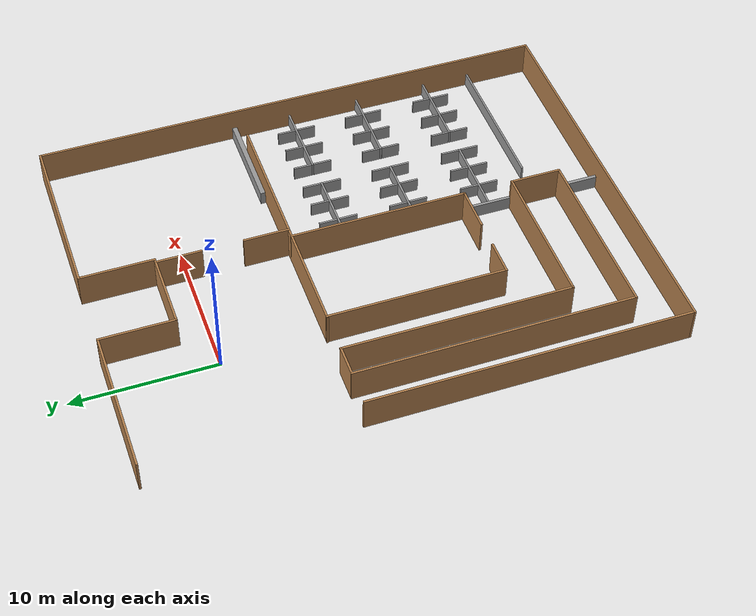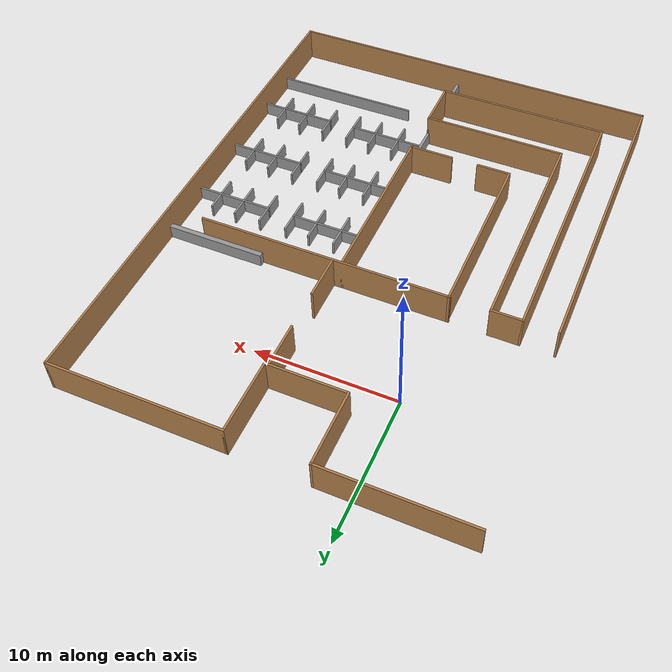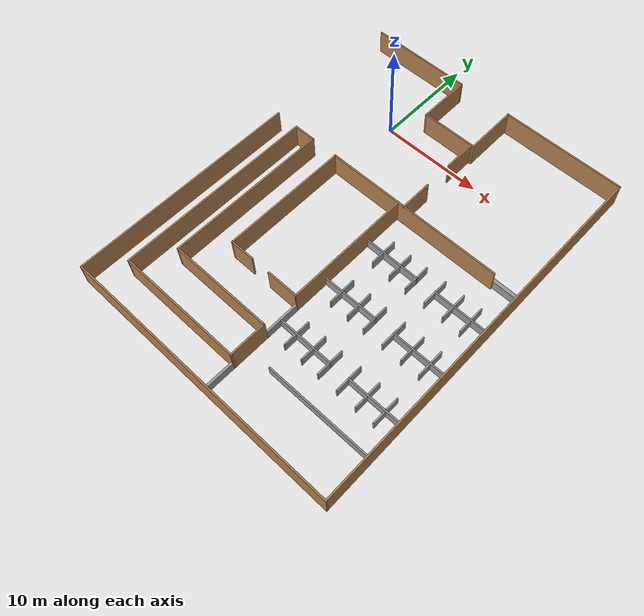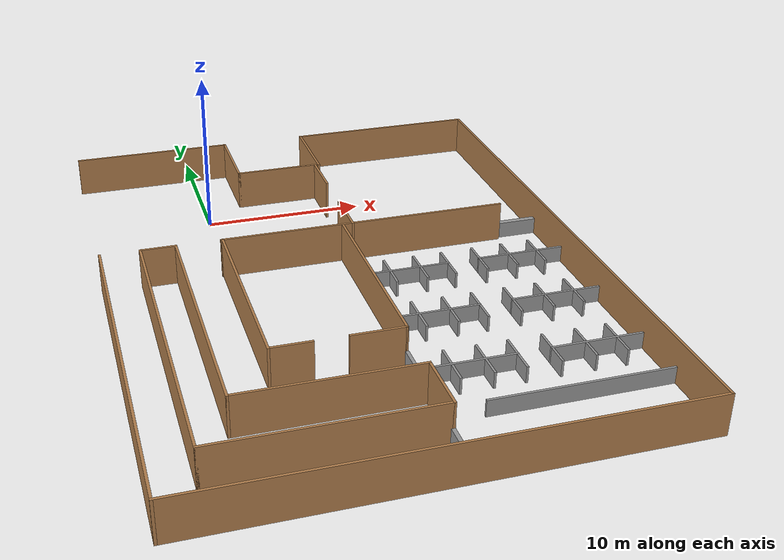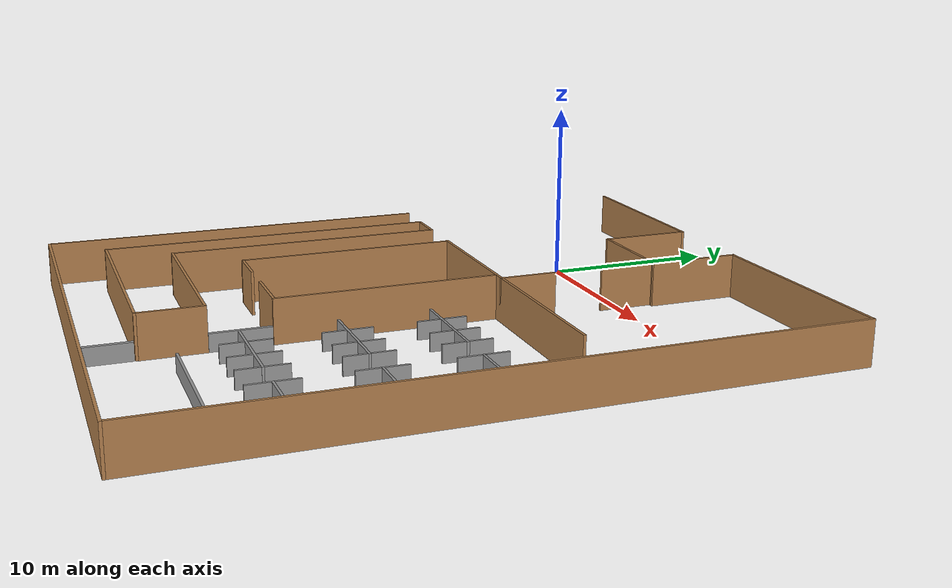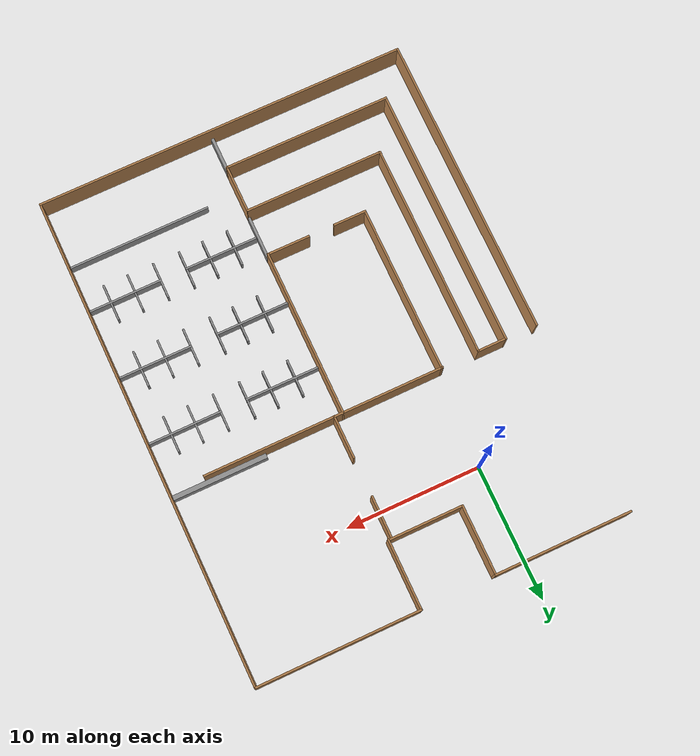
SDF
<sdf version="1.7">
 <world name="default">
  <gravity>0 0 -9.8</gravity>
  <magnetic_field>6e-06 2.3e-05 -4.2e-05</magnetic_field>
  <atmosphere type="adiabatic"/>
  <physics name="default_physics" default="0" type="ode">
   <max_step_size>0.001</max_step_size>
   <real_time_factor>1</real_time_factor>
   <real_time_update_rate>1000</real_time_update_rate>
  </physics>
  <scene>
   <ambient>0.4 0.4 0.4 1</ambient>
   <background>0.7 0.7 0.7 1</background>
   <shadows>1</shadows>
   <grid>0</grid>
   <origin_visual>0</origin_visual>
  </scene>
  <spherical_coordinates>
   <surface_model>EARTH_WGS84</surface_model>
   <latitude_deg>0</latitude_deg>
   <longitude_deg>0</longitude_deg>
   <elevation>0</elevation>
   <heading_deg>0</heading_deg>
  </spherical_coordinates>
  <light name="RetailShop_CeilingLight_001" type="point">
   <pose>2.77442 -3.62815 3.17847 0 -0 0</pose>
   <diffuse>0.5 0.5 0.5 1</diffuse>
   <specular>0.1 0.1 0.1 1</specular>
   <attenuation>
    <range>20</range>
    <constant>0.32</constant>
    <linear>0.01</linear>
    <quadratic>0.03</quadratic>
   </attenuation>
   <cast_shadows>0</cast_shadows>
   <direction>0 0 -1</direction>
   <spot><inner_angle>0</inner_angle><outer_angle>0</outer_angle><falloff>0</falloff></spot>
  </light>
  <light name="RetailShop_CeilingLight_002" type="point">
   <pose>5.38399 -5.38371 3.17847 0 -0 0</pose>
   <diffuse>0.5 0.5 0.5 1</diffuse>
   <specular>0.1 0.1 0.1 1</specular>
   <attenuation>
    <range>20</range>
    <constant>0.32</constant>
    <linear>0.01</linear>
    <quadratic>0.03</quadratic>
   </attenuation>
   <cast_shadows>0</cast_shadows>
   <direction>0 0 -1</direction>
   <spot><inner_angle>0</inner_angle><outer_angle>0</outer_angle><falloff>0</falloff></spot>
  </light>
  <light name="RetailShop_CeilingLight_003" type="point">
   <pose>5.38399 0.04192 3.17847 0 -0 0</pose>
   <diffuse>0.5 0.5 0.5 1</diffuse>
   <specular>0.1 0.1 0.1 1</specular>
   <attenuation>
    <range>20</range>
    <constant>0.32</constant>
    <linear>0.01</linear>
    <quadratic>0.03</quadratic>
   </attenuation>
   <cast_shadows>0</cast_shadows>
   <direction>0 0 -1</direction>
   <spot><inner_angle>0</inner_angle><outer_angle>0</outer_angle><falloff>0</falloff></spot>
  </light>
  <light name="RetailShop_CeilingLight_004" type="point">
   <pose>-3.21067 -5.38371 3.17847 0 -0 0</pose>
   <diffuse>0.5 0.5 0.5 1</diffuse>
   <specular>0.1 0.1 0.1 1</specular>
   <attenuation>
    <range>20</range>
    <constant>0.32</constant>
    <linear>0.01</linear>
    <quadratic>0.03</quadratic>
   </attenuation>
   <cast_shadows>0</cast_shadows>
   <direction>0 0 -1</direction>
   <spot><inner_angle>0</inner_angle><outer_angle>0</outer_angle><falloff>0</falloff></spot>
  </light>
  <light name="RetailShop_CeilingLight_005" type="point">
   <pose>-3.271 2.68593 3.17847 0 -0 0</pose>
   <diffuse>0.5 0.5 0.5 1</diffuse>
   <specular>0.1 0.1 0.1 1</specular>
   <attenuation>
    <range>20</range>
    <constant>0.32</constant>
    <linear>0.01</linear>
    <quadratic>0.03</quadratic>
   </attenuation>
   <cast_shadows>0</cast_shadows>
   <direction>0 0 -1</direction>
   <spot><inner_angle>0</inner_angle><outer_angle>0</outer_angle><falloff>0</falloff></spot>
  </light>
  <light name="RetailShop_CeilingLight_006" type="point">
   <pose>1.4932 4.69237 3.17847 0 -0 0</pose>
   <diffuse>0.5 0.5 0.5 1</diffuse>
   <specular>0.1 0.1 0.1 1</specular>
   <attenuation>
    <range>20</range>
    <constant>0.32</constant>
    <linear>0.01</linear>
    <quadratic>0.03</quadratic>
   </attenuation>
   <cast_shadows>0</cast_shadows>
   <direction>0 0 -1</direction>
   <spot><inner_angle>0</inner_angle><outer_angle>0</outer_angle><falloff>0</falloff></spot>
  </light>
  <audio><device>default</device></audio>
  <model name="wall10">
   <pose>3.93507 3.6415 0 0 -0 0</pose>
   <link name="Wall_36">
    <collision name="Wall_36_Collision">
     <geometry><box><size>5.5 0.15 2.5</size></box></geometry>
     <pose>0 0 1.25 0 -0 0</pose>
    </collision>
    <visual name="Wall_36_Visual">
     <pose>0 0 1.25 0 -0 0</pose>
     <geometry><box><size>5.5 0.15 2.5</size></box></geometry>
     <material>
      <script><uri>file://media/materials/scripts/gazebo.material</uri><name>Gazebo/Wood</name></script>
      <ambient>1 1 1 1</ambient>
     </material>
     <meta><layer>0</layer></meta>
    </visual>
    <pose>1.18507 -1.53348 0 0 -0 6e-06</pose>
   </link>
   <link name="Wall_38">
    <collision name="Wall_38_Collision">
     <geometry><box><size>5.25 0.15 2.5</size></box></geometry>
     <pose>0 0 1.25 0 -0 0</pose>
    </collision>
    <visual name="Wall_38_Visual">
     <pose>0 0 1.25 0 -0 0</pose>
     <geometry><box><size>5.25 0.15 2.5</size></box></geometry>
     <material>
      <script><uri>file://media/materials/scripts/gazebo.material</uri><name>Gazebo/Wood</name></script>
      <ambient>1 1 1 1</ambient>
     </material>
     <meta><layer>0</layer></meta>
    </visual>
    <pose>-1.49007 1.0165 0 0 -0 1.5708</pose>
   </link>
   <static>1</static>
  </model>
  <model name="bigwall1">
   <pose>10.06 -11.092 0 0 -0 0</pose>
   <link name="Wall_40">
    <collision name="Wall_40_Collision">
     <geometry><box><size>5.25 0.15 2.5</size></box></geometry>
     <pose>0 0 1.25 0 -0 0</pose>
    </collision>
    <visual name="Wall_40_Visual">
     <pose>0 0 1.25 0 -0 0</pose>
     <geometry><box><size>5.25 0.15 2.5</size></box></geometry>
     <material>
      <script><uri>file://media/materials/scripts/gazebo.material</uri><name>Gazebo/Wood</name></script>
      <ambient>1 1 1 1</ambient>
     </material>
     <meta><layer>0</layer></meta>
    </visual>
    <pose>-2.115 15.75 0 0 -0 1.5708</pose>
   </link>
   <link name="Wall_42">
    <collision name="Wall_42_Collision">
     <geometry><box><size>12.25 0.15 2.5</size></box></geometry>
     <pose>0 0 1.25 0 -0 0</pose>
    </collision>
    <visual name="Wall_42_Visual">
     <pose>0 0 1.25 0 -0 0</pose>
     <geometry><box><size>12.25 0.15 2.5</size></box></geometry>
     <material>
      <script><uri>file://media/materials/scripts/gazebo.material</uri><name>Gazebo/Wood</name></script>
      <ambient>1 1 1 1</ambient>
     </material>
     <meta><layer>0</layer></meta>
    </visual>
    <pose>3.935 18.3 0 0 -0 0</pose>
   </link>
   <link name="Wall_49">
    <collision name="Wall_49_Collision">
     <geometry><box><size>36.75 0.15 2.5</size></box></geometry>
     <pose>0 0 1.25 0 -0 0</pose>
    </collision>
    <visual name="Wall_49_Visual">
     <pose>0 0 1.25 0 -0 0</pose>
     <geometry><box><size>36.75 0.15 2.5</size></box></geometry>
     <material>
      <script><uri>file://media/materials/scripts/gazebo.material</uri><name>Gazebo/Wood</name></script>
      <ambient>1 1 1 1</ambient>
     </material>
     <meta><layer>0</layer></meta>
    </visual>
    <pose>9.985 0 0 0 -0 -1.5708</pose>
   </link>
   <static>1</static>
  </model>
  <model name="wall_40">
   <pose>-2.605 3.6415 0 0 -0 0</pose>
   <link name="Wall_96">
    <collision name="Wall_96_Collision">
     <geometry><box><size>10.25 0.15 2.5</size></box></geometry>
     <pose>0 0 1.25 0 -0 0</pose>
    </collision>
    <visual name="Wall_96_Visual">
     <pose>0 0 1.25 0 -0 0</pose>
     <geometry><box><size>10.25 0.15 2.5</size></box></geometry>
     <material>
      <script><uri>file://media/materials/scripts/gazebo.material</uri><name>Gazebo/Wood</name></script>
      <ambient>1 1 1 1</ambient>
     </material>
     <meta><layer>0</layer></meta>
    </visual>
    <pose>0 3.5665 0 0 -0 3.14159</pose>
   </link>
   <static>1</static>
  </model>
  <model name="WALL_C">
   <pose>6.195 -14.7335 0 0 -0 0</pose>
   <link name="Wall_98">
    <collision name="Wall_98_Collision">
     <geometry><box><size>27.85 0.15 2.5</size></box></geometry>
     <pose>0 0 1.25 0 -0 0</pose>
    </collision>
    <visual name="Wall_98_Visual">
     <pose>0 0 1.25 0 -0 0</pose>
     <geometry><box><size>27.85 0.15 2.5</size></box></geometry>
     <material>
      <script><uri>file://media/materials/scripts/gazebo.material</uri><name>Gazebo/Wood</name></script>
      <ambient>1 1 1 1</ambient>
     </material>
     <meta><layer>0</layer></meta>
    </visual>
    <pose>-0 -14.6585 0 0 -0 3.14159</pose>
   </link>
   <static>1</static>
  </model>
  <model name="WALL_D">
   <pose>-3.865 -14.7335 0 0 -0 0</pose>
   <link name="Wall_100">
    <collision name="Wall_100_Collision">
     <geometry><box><size>22.5 0.15 2.5</size></box></geometry>
     <pose>0 0 1.25 0 -0 0</pose>
    </collision>
    <visual name="Wall_100_Visual">
     <pose>0 0 1.25 0 -0 0</pose>
     <geometry><box><size>22.5 0.15 2.5</size></box></geometry>
     <material>
      <script><uri>file://media/materials/scripts/gazebo.material</uri><name>Gazebo/Wood</name></script>
      <ambient>1 1 1 1</ambient>
     </material>
     <meta><layer>0</layer></meta>
    </visual>
    <pose>-3.79 -3.4835 0 0 -0 1.5708</pose>
   </link>
   <static>1</static>
  </model>
  <light name="RetailShop_CeilingLight_006_clone" type="point">
   <pose>13.2087 -12.9727 3.17847 0 -0 0</pose>
   <diffuse>0.5 0.5 0.5 1</diffuse>
   <specular>0.1 0.1 0.1 1</specular>
   <direction>0 0 -1</direction>
   <attenuation>
    <range>20</range>
    <constant>0.32</constant>
    <linear>0.01</linear>
    <quadratic>0.03</quadratic>
   </attenuation>
   <cast_shadows>0</cast_shadows>
   <spot><inner_angle>0</inner_angle><outer_angle>0</outer_angle><falloff>0</falloff></spot>
  </light>
  <light name="RetailShop_CeilingLight_001_clone_clone" type="point">
   <pose>13.1607 -16.7337 3.17847 0 -0 0</pose>
   <diffuse>0.5 0.5 0.5 1</diffuse>
   <specular>0.1 0.1 0.1 1</specular>
   <direction>0 0 -1</direction>
   <attenuation>
    <range>20</range>
    <constant>0.32</constant>
    <linear>0.01</linear>
    <quadratic>0.03</quadratic>
   </attenuation>
   <cast_shadows>0</cast_shadows>
   <spot><inner_angle>0</inner_angle><outer_angle>0</outer_angle><falloff>0</falloff></spot>
  </light>
  <light name="RetailShop_CeilingLight_002_clone_clone" type="point">
   <pose>13.1202 -20.5297 3.17847 0 -0 0</pose>
   <diffuse>0.5 0.5 0.5 1</diffuse>
   <specular>0.1 0.1 0.1 1</specular>
   <direction>0 0 -1</direction>
   <attenuation>
    <range>20</range>
    <constant>0.32</constant>
    <linear>0.01</linear>
    <quadratic>0.03</quadratic>
   </attenuation>
   <cast_shadows>0</cast_shadows>
   <spot><inner_angle>0</inner_angle><outer_angle>0</outer_angle><falloff>0</falloff></spot>
  </light>
  <light name="RetailShop_CeilingLight_003_clone_clone" type="point">
   <pose>13.1202 -24.511 3.17847 0 -0 0</pose>
   <diffuse>0.5 0.5 0.5 1</diffuse>
   <specular>0.1 0.1 0.1 1</specular>
   <direction>0 0 -1</direction>
   <attenuation>
    <range>20</range>
    <constant>0.32</constant>
    <linear>0.01</linear>
    <quadratic>0.03</quadratic>
   </attenuation>
   <cast_shadows>0</cast_shadows>
   <spot><inner_angle>0</inner_angle><outer_angle>0</outer_angle><falloff>0</falloff></spot>
  </light>
  <model name="WALL_G">
   <pose>6.097 -3.5585 0 0 -0 0</pose>
   <link name="Wall_0">
    <collision name="Wall_0_Collision">
     <geometry><box><size>2.15 0.15 2.5</size></box></geometry>
     <pose>0 0 1.25 0 -0 0</pose>
    </collision>
    <visual name="Wall_0_Visual">
     <pose>0 0 1.25 0 -0 0</pose>
     <geometry><box><size>2.15 0.15 2.5</size></box></geometry>
     <material>
      <script><uri>file://media/materials/scripts/gazebo.material</uri><name>Gazebo/Wood</name></script>
      <ambient>1 1 1 1</ambient>
     </material>
     <meta><layer>0</layer></meta>
    </visual>
    <pose>-10.297 -3.4835 0 0 -0 0</pose>
   </link>
   <link name="Wall_9">
    <collision name="Wall_9_Collision">
     <geometry><box><size>18 0.15 2.5</size></box></geometry>
     <pose>0 0 1.25 0 -0 0</pose>
    </collision>
    <visual name="Wall_9_Visual">
     <pose>0 0 1.25 0 -0 0</pose>
     <geometry><box><size>18 0.15 2.5</size></box></geometry>
     <material>
      <script><uri>file://media/materials/scripts/gazebo.material</uri><name>Gazebo/Wood</name></script>
      <ambient>1 1 1 1</ambient>
     </material>
     <meta><layer>0</layer></meta>
    </visual>
    <pose>2.372 -3.4835 0 0 -0 0</pose>
   </link>
   <static>1</static>
  </model>
  <model name="WALL_F">
   <pose>3.885 -2.467 0 0 -0 0</pose>
   <link name="Wall_11">
    <collision name="Wall_11_Collision">
     <geometry><box><size>3.25 0.15 2.5</size></box></geometry>
     <pose>0 0 1.25 0 -0 0</pose>
    </collision>
    <visual name="Wall_11_Visual">
     <pose>0 0 1.25 0 -0 0</pose>
     <geometry><box><size>3.25 0.15 2.5</size></box></geometry>
     <material>
      <script><uri>file://media/materials/scripts/gazebo.material</uri><name>Gazebo/Wood</name></script>
      <ambient>1 1 1 1</ambient>
     </material>
     <meta><layer>0</layer></meta>
    </visual>
    <pose>3.81 -3.025 0 0 -0 1.5708</pose>
   </link>
   <link name="Wall_13">
    <collision name="Wall_13_Collision">
     <geometry><box><size>3.25 0.15 2.5</size></box></geometry>
     <pose>0 0 1.25 0 -0 0</pose>
    </collision>
    <visual name="Wall_13_Visual">
     <pose>0 0 1.25 0 -0 0</pose>
     <geometry><box><size>3.25 0.15 2.5</size></box></geometry>
     <material>
      <script><uri>file://media/materials/scripts/gazebo.material</uri><name>Gazebo/Wood</name></script>
      <ambient>1 1 1 1</ambient>
     </material>
     <meta><layer>0</layer></meta>
    </visual>
    <pose>3.81 3.025 0 0 -0 -1.5708</pose>
   </link>
   <static>1</static>
  </model>
  <model name="WALL_H1">
   <pose>0.875 -13.2335 0 0 -0 0</pose>
   <link name="Wall_21">
    <collision name="Wall_21_Collision">
     <geometry><box><size>19.5 0.15 2.5</size></box></geometry>
     <pose>0 0 1.25 0 -0 0</pose>
    </collision>
    <visual name="Wall_21_Visual">
     <pose>0 0 1.25 0 -0 0</pose>
     <geometry><box><size>19.5 0.15 2.5</size></box></geometry>
     <material>
      <script><uri>file://media/materials/scripts/gazebo.material</uri><name>Gazebo/Wood</name></script>
      <ambient>1 1 1 1</ambient>
     </material>
     <meta><layer>0</layer></meta>
    </visual>
    <pose>-6.175 -3.4835 0 0 -0 -1.5708</pose>
   </link>
   <link name="Wall_23">
    <collision name="Wall_23_Collision">
     <geometry><box><size>12.5 0.15 2.5</size></box></geometry>
     <pose>0 0 1.25 0 -0 0</pose>
    </collision>
    <visual name="Wall_23_Visual">
     <pose>0 0 1.25 0 -0 0</pose>
     <geometry><box><size>12.5 0.15 2.5</size></box></geometry>
     <material>
      <script><uri>file://media/materials/scripts/gazebo.material</uri><name>Gazebo/Wood</name></script>
      <ambient>1 1 1 1</ambient>
     </material>
     <meta><layer>0</layer></meta>
    </visual>
    <pose>1e-06 -13.1585 0 0 -0 0</pose>
   </link>
   <static>1</static>
  </model>
  <model name="WALL_I_1">
   <pose>1.925 -13.2335 0 0 -0 0</pose>
   <link name="Wall_27">
    <collision name="Wall_27_Collision">
     <geometry><box><size>16 0.15 2.5</size></box></geometry>
     <pose>0 0 1.25 0 -0 0</pose>
    </collision>
    <visual name="Wall_27_Visual">
     <pose>0 0 1.25 0 -0 0</pose>
     <geometry><box><size>16 0.15 2.5</size></box></geometry>
     <material>
      <script><uri>file://media/materials/scripts/gazebo.material</uri><name>Gazebo/Wood</name></script>
      <ambient>1 1 1 1</ambient>
     </material>
     <meta><layer>0</layer></meta>
    </visual>
    <pose>-5.125 -1.7335 0 0 -0 -1.5708</pose>
   </link>
   <link name="Wall_30">
    <collision name="Wall_30_Collision">
     <geometry><box><size>10.4 0.15 2.5</size></box></geometry>
     <pose>0 0 1.25 0 -0 0</pose>
    </collision>
    <visual name="Wall_30_Visual">
     <pose>0 0 1.25 0 -0 0</pose>
     <geometry><box><size>10.4 0.15 2.5</size></box></geometry>
     <material>
      <script><uri>file://media/materials/scripts/gazebo.material</uri><name>Gazebo/Wood</name></script>
      <ambient>1 1 1 1</ambient>
     </material>
     <meta><layer>0</layer></meta>
    </visual>
    <pose>0 -9.6585 0 0 -0 0</pose>
   </link>
   <link name="Wall_32">
    <collision name="Wall_32_Collision">
     <geometry><box><size>3.65 0.15 2.5</size></box></geometry>
     <pose>0 0 1.25 0 -0 0</pose>
    </collision>
    <visual name="Wall_32_Visual">
     <pose>0 0 1.25 0 -0 0</pose>
     <geometry><box><size>3.65 0.15 2.5</size></box></geometry>
     <material>
      <script><uri>file://media/materials/scripts/gazebo.material</uri><name>Gazebo/Wood</name></script>
      <ambient>1 1 1 1</ambient>
     </material>
     <meta><layer>0</layer></meta>
    </visual>
    <pose>5.125 -11.4085 0 0 -0 -1.5708</pose>
   </link>
   <static>1</static>
  </model>
  <model name="WALL_T1">
   <pose>3.325 -9.7336 0 0 -0 0</pose>
   <link name="Wall_35">
    <collision name="Wall_35_Collision">
     <geometry><box><size>12.5004 0.15 2.5</size></box></geometry>
     <pose>0 0 1.25 0 -0 0</pose>
    </collision>
    <visual name="Wall_35_Visual">
     <pose>0 0 1.25 0 -0 0</pose>
     <geometry><box><size>12.5004 0.15 2.5</size></box></geometry>
     <material>
      <script><uri>file://media/materials/scripts/gazebo.material</uri><name>Gazebo/Wood</name></script>
      <ambient>1 1 1 1</ambient>
     </material>
     <meta><layer>0</layer></meta>
    </visual>
    <pose>-3.725 -3.4834 0 0 -0 -1.5708</pose>
   </link>
   <link name="Wall_40">
    <collision name="Wall_40_Collision">
     <geometry><box><size>2.5 0.15 2.5</size></box></geometry>
     <pose>0 0 1.25 0 -0 0</pose>
    </collision>
    <visual name="Wall_40_Visual">
     <pose>0 0 1.25 0 -0 0</pose>
     <geometry><box><size>2.5 0.15 2.5</size></box></geometry>
     <material>
      <script><uri>file://media/materials/scripts/gazebo.material</uri><name>Gazebo/Wood</name></script>
      <ambient>1 1 1 1</ambient>
     </material>
     <meta><layer>0</layer></meta>
    </visual>
    <pose>-2.55 -9.6584 0 0 -0 0</pose>
   </link>
   <link name="Wall_42">
    <collision name="Wall_42_Collision">
     <geometry><box><size>3.235 0.15 2.5</size></box></geometry>
     <pose>0 0 1.25 0 -0 0</pose>
    </collision>
    <visual name="Wall_42_Visual">
     <pose>0 0 1.25 0 -0 0</pose>
     <geometry><box><size>3.235 0.15 2.5</size></box></geometry>
     <material>
      <script><uri>file://media/materials/scripts/gazebo.material</uri><name>Gazebo/Wood</name></script>
      <ambient>1 1 1 1</ambient>
     </material>
     <meta><layer>0</layer></meta>
    </visual>
    <pose>2.1825 -9.6584 0 0 -0 0</pose>
   </link>
   <link name="Wall_44">
    <collision name="Wall_44_Collision">
     <geometry><box><size>12.5 0.15 2.5</size></box></geometry>
     <pose>0 0 1.25 0 -0 0</pose>
    </collision>
    <visual name="Wall_44_Visual">
     <pose>0 0 1.25 0 -0 0</pose>
     <geometry><box><size>12.5 0.15 2.5</size></box></geometry>
     <material>
      <script><uri>file://media/materials/scripts/gazebo.material</uri><name>Gazebo/Wood</name></script>
      <ambient>1 1 1 1</ambient>
     </material>
     <meta><layer>0</layer></meta>
    </visual>
    <pose>3.725 -3.4834 0 0 -0 1.5708</pose>
   </link>
   <static>1</static>
  </model>
  <light name="RetailShop_CeilingLight_004_clone" type="point">
   <pose>-6.13266 -17.1599 3.17847 0 -0 0</pose>
   <diffuse>0.5 0.5 0.5 1</diffuse>
   <specular>0.1 0.1 0.1 1</specular>
   <direction>0 0 -1</direction>
   <attenuation>
    <range>20</range>
    <constant>0.32</constant>
    <linear>0.01</linear>
    <quadratic>0.03</quadratic>
   </attenuation>
   <cast_shadows>0</cast_shadows>
   <spot><inner_angle>0</inner_angle><outer_angle>0</outer_angle><falloff>0</falloff></spot>
  </light>
  <light name="RetailShop_CeilingLight_005_clone" type="point">
   <pose>0.627461 -27.5951 3.17847 0 -0 0</pose>
   <diffuse>0.5 0.5 0.5 1</diffuse>
   <specular>0.1 0.1 0.1 1</specular>
   <direction>0 0 -1</direction>
   <attenuation>
    <range>20</range>
    <constant>0.32</constant>
    <linear>0.01</linear>
    <quadratic>0.03</quadratic>
   </attenuation>
   <cast_shadows>0</cast_shadows>
   <spot><inner_angle>0</inner_angle><outer_angle>0</outer_angle><falloff>0</falloff></spot>
  </light>
  <light name="RetailShop_CeilingLight_006_clone_0" type="point">
   <pose>-1.27399 -20.3289 3.17847 0 -0 0</pose>
   <diffuse>0.5 0.5 0.5 1</diffuse>
   <specular>0.1 0.1 0.1 1</specular>
   <direction>0 0 -1</direction>
   <attenuation>
    <range>20</range>
    <constant>0.32</constant>
    <linear>0.01</linear>
    <quadratic>0.03</quadratic>
   </attenuation>
   <cast_shadows>0</cast_shadows>
   <spot><inner_angle>0</inner_angle><outer_angle>0</outer_angle><falloff>0</falloff></spot>
  </light>
  <light name="RetailShop_CeilingLight_004_clone_clone" type="point">
   <pose>3.45814 -13.6533 3.17847 0 -0 0</pose>
   <diffuse>0.5 0.5 0.5 1</diffuse>
   <specular>0.1 0.1 0.1 1</specular>
   <direction>0 0 -1</direction>
   <attenuation>
    <range>20</range>
    <constant>0.32</constant>
    <linear>0.01</linear>
    <quadratic>0.03</quadratic>
   </attenuation>
   <cast_shadows>0</cast_shadows>
   <spot><inner_angle>0</inner_angle><outer_angle>0</outer_angle><falloff>0</falloff></spot>
  </light>
  <light name="RetailShop_CeilingLight_005_clone_clone" type="point">
   <pose>13.5136 -0.725148 3.17847 0 -0 0</pose>
   <diffuse>0.5 0.5 0.5 1</diffuse>
   <specular>0.1 0.1 0.1 1</specular>
   <direction>0 0 -1</direction>
   <attenuation>
    <range>20</range>
    <constant>0.32</constant>
    <linear>0.01</linear>
    <quadratic>0.03</quadratic>
   </attenuation>
   <cast_shadows>0</cast_shadows>
   <spot><inner_angle>0</inner_angle><outer_angle>0</outer_angle><falloff>0</falloff></spot>
  </light>
  <model name="unit_box">
   <pose>16.4559 -6.76897 0.513382 0 -0 2.4e-05</pose>
   <link name="link">
    <inertial>
     <mass>1</mass>
     <inertia>
      <ixx>0.166667</ixx>
      <ixy>0</ixy>
      <ixz>0</ixz>
      <iyy>0.166667</iyy>
      <iyz>0</iyz>
      <izz>0.166667</izz>
     </inertia>
    </inertial>
    <collision name="collision"><geometry><box><size>7.02816 0.351105 1</size></box></geometry></collision>
    <visual name="visual">
     <geometry><box><size>7.02816 0.351105 1</size></box></geometry>
     <material>
      <script><name>Gazebo/Grey</name><uri>file://media/materials/scripts/gazebo.material</uri></script>
     </material>
    </visual>
   </link>
  </model>
  <model name="unit_box_0">
   <pose>7.04218 -21.148 0.513382 0 0 -0.002302</pose>
   <link name="link">
    <inertial>
     <mass>1</mass>
     <inertia>
      <ixx>0.166667</ixx>
      <ixy>0</ixy>
      <ixz>0</ixz>
      <iyy>0.166667</iyy>
      <iyz>0</iyz>
      <izz>0.166667</izz>
     </inertia>
    </inertial>
    <collision name="collision"><geometry><box><size>0.202677 3.3377 1</size></box></geometry></collision>
    <visual name="visual">
     <geometry><box><size>0.202677 3.3377 1</size></box></geometry>
     <material>
      <script><name>Gazebo/Grey</name><uri>file://media/materials/scripts/gazebo.material</uri></script>
     </material>
    </visual>
   </link>
  </model>
  <model name="unit_box_1">
   <pose>6.99934 -27.8976 0.513382 0 2e-06 -0.002121</pose>
   <link name="link">
    <inertial>
     <mass>1</mass>
     <inertia>
      <ixx>0.166667</ixx>
      <ixy>0</ixy>
      <ixz>0</ixz>
      <iyy>0.166667</iyy>
      <iyz>0</iyz>
      <izz>0.166667</izz>
     </inertia>
    </inertial>
    <collision name="collision"><geometry><box><size>0.231277 2.81722 1</size></box></geometry></collision>
    <visual name="visual">
     <geometry><box><size>0.231277 2.81722 1</size></box></geometry>
     <material>
      <script><name>Gazebo/Grey</name><uri>file://media/materials/scripts/gazebo.material</uri></script>
     </material>
    </visual>
   </link>
  </model>
  <model name="unit_box_2_clone">
   <pose>9.89237 -10.9266 0.513382 -1e-06 -0 -0.003372</pose>
   <link name="link">
    <inertial>
     <mass>1</mass>
     <inertia>
      <ixx>0.166667</ixx>
      <ixy>0</ixy>
      <ixz>0</ixz>
      <iyy>0.166667</iyy>
      <iyz>0</iyz>
      <izz>0.166667</izz>
     </inertia>
    </inertial>
    <collision name="collision"><geometry><box><size>5.47238 0.138756 1</size></box></geometry></collision>
    <visual name="visual">
     <geometry><box><size>5.47238 0.138756 1</size></box></geometry>
     <material>
      <script><name>Gazebo/Grey</name><uri>file://media/materials/scripts/gazebo.material</uri></script>
     </material>
    </visual>
   </link>
  </model>
  <model name="unit_box_3_clone_clone_1_clone">
   <pose>10.7811 -10.2118 0.513373 -8e-06 -1e-06 -0.001355</pose>
   <link name="link">
    <inertial>
     <mass>1</mass>
     <inertia>
      <ixx>0.166667</ixx>
      <ixy>0</ixy>
      <ixz>0</ixz>
      <iyy>0.166667</iyy>
      <iyz>0</iyz>
      <izz>0.166667</izz>
     </inertia>
    </inertial>
    <collision name="collision"><geometry><box><size>0.135515 1.29492 1</size></box></geometry></collision>
    <visual name="visual">
     <geometry><box><size>0.135515 1.29492 1</size></box></geometry>
     <material>
      <script><name>Gazebo/Grey</name><uri>file://media/materials/scripts/gazebo.material</uri></script>
     </material>
    </visual>
   </link>
  </model>
  <model name="unit_box_2_clone_clone">
   <pose>17.2337 -10.9017 0.513382 -0 -1e-06 0.00212</pose>
   <link name="link">
    <inertial>
     <mass>1</mass>
     <inertia>
      <ixx>0.166667</ixx>
      <ixy>0</ixy>
      <ixz>0</ixz>
      <iyy>0.166667</iyy>
      <iyz>0</iyz>
      <izz>0.166667</izz>
     </inertia>
    </inertial>
    <collision name="collision"><geometry><box><size>5.47238 0.138756 1</size></box></geometry></collision>
    <visual name="visual">
     <geometry><box><size>5.47238 0.138756 1</size></box></geometry>
     <material>
      <script><name>Gazebo/Grey</name><uri>file://media/materials/scripts/gazebo.material</uri></script>
     </material>
    </visual>
   </link>
  </model>
  <model name="unit_box_3_clone_clone_1_clone_clone">
   <pose>8.892 -10.2045 0.513382 -6e-06 1e-06 -0.003469</pose>
   <link name="link">
    <inertial>
     <mass>1</mass>
     <inertia>
      <ixx>0.166667</ixx>
      <ixy>0</ixy>
      <ixz>0</ixz>
      <iyy>0.166667</iyy>
      <iyz>0</iyz>
      <izz>0.166667</izz>
     </inertia>
    </inertial>
    <collision name="collision"><geometry><box><size>0.135515 1.29492 1</size></box></geometry></collision>
    <visual name="visual">
     <geometry><box><size>0.135515 1.29492 1</size></box></geometry>
     <material>
      <script><name>Gazebo/Grey</name><uri>file://media/materials/scripts/gazebo.material</uri></script>
     </material>
    </visual>
   </link>
  </model>
  <model name="unit_box_3_clone_clone_1_clone_clone_0">
   <pose>12.5566 -10.2187 0.513363 -3e-06 0 -0.00417</pose>
   <link name="link">
    <inertial>
     <mass>1</mass>
     <inertia>
      <ixx>0.166667</ixx>
      <ixy>0</ixy>
      <ixz>0</ixz>
      <iyy>0.166667</iyy>
      <iyz>0</iyz>
      <izz>0.166667</izz>
     </inertia>
    </inertial>
    <collision name="collision"><geometry><box><size>0.135515 1.29492 1</size></box></geometry></collision>
    <visual name="visual">
     <geometry><box><size>0.135515 1.29492 1</size></box></geometry>
     <material>
      <script><name>Gazebo/Grey</name><uri>file://media/materials/scripts/gazebo.material</uri></script>
     </material>
    </visual>
   </link>
  </model>
  <model name="unit_box_3_clone_clone_1_clone_clone_0_clone">
   <pose>18.3065 -10.1776 0.513382 0 0 -0.003273</pose>
   <link name="link">
    <inertial>
     <mass>1</mass>
     <inertia>
      <ixx>0.166667</ixx>
      <ixy>0</ixy>
      <ixz>0</ixz>
      <iyy>0.166667</iyy>
      <iyz>0</iyz>
      <izz>0.166667</izz>
     </inertia>
    </inertial>
    <collision name="collision"><geometry><box><size>0.135515 1.29492 1</size></box></geometry></collision>
    <visual name="visual">
     <geometry><box><size>0.135515 1.29492 1</size></box></geometry>
     <material>
      <script><name>Gazebo/Grey</name><uri>file://media/materials/scripts/gazebo.material</uri></script>
     </material>
    </visual>
   </link>
  </model>
  <model name="unit_box_3_clone_clone_1_clone_clone_0_clone_0">
   <pose>16.501 -10.1843 0.513373 -0 -0 -0.003286</pose>
   <link name="link">
    <inertial>
     <mass>1</mass>
     <inertia>
      <ixx>0.166667</ixx>
      <ixy>0</ixy>
      <ixz>0</ixz>
      <iyy>0.166667</iyy>
      <iyz>0</iyz>
      <izz>0.166667</izz>
     </inertia>
    </inertial>
    <collision name="collision"><geometry><box><size>0.135515 1.29492 1</size></box></geometry></collision>
    <visual name="visual">
     <geometry><box><size>0.135515 1.29492 1</size></box></geometry>
     <material>
      <script><name>Gazebo/Grey</name><uri>file://media/materials/scripts/gazebo.material</uri></script>
     </material>
    </visual>
   </link>
  </model>
  <model name="unit_box_3_clone_clone_1_clone_clone_0_clone_1">
   <pose>14.5655 -10.19 0.513382 0 0 -0.004829</pose>
   <link name="link">
    <inertial>
     <mass>1</mass>
     <inertia>
      <ixx>0.166667</ixx>
      <ixy>0</ixy>
      <ixz>0</ixz>
      <iyy>0.166667</iyy>
      <iyz>0</iyz>
      <izz>0.166667</izz>
     </inertia>
    </inertial>
    <collision name="collision"><geometry><box><size>0.135515 1.29492 1</size></box></geometry></collision>
    <visual name="visual">
     <geometry><box><size>0.135515 1.29492 1</size></box></geometry>
     <material>
      <script><name>Gazebo/Grey</name><uri>file://media/materials/scripts/gazebo.material</uri></script>
     </material>
    </visual>
   </link>
  </model>
  <model name="unit_box_3_clone_clone_1_clone_clone_0_clone_clone">
   <pose>18.3094 -11.6239 0.513382 -0 -0 -0.003292</pose>
   <link name="link">
    <inertial>
     <mass>1</mass>
     <inertia>
      <ixx>0.166667</ixx>
      <ixy>0</ixy>
      <ixz>0</ixz>
      <iyy>0.166667</iyy>
      <iyz>0</iyz>
      <izz>0.166667</izz>
     </inertia>
    </inertial>
    <collision name="collision"><geometry><box><size>0.135515 1.29492 1</size></box></geometry></collision>
    <visual name="visual">
     <geometry><box><size>0.135515 1.29492 1</size></box></geometry>
     <material>
      <script><name>Gazebo/Grey</name><uri>file://media/materials/scripts/gazebo.material</uri></script>
     </material>
    </visual>
   </link>
  </model>
  <model name="unit_box_3_clone_clone_1_clone_clone_0_clone_clone_0">
   <pose>16.4921 -11.6205 0.513372 0 0 -0.002689</pose>
   <link name="link">
    <inertial>
     <mass>1</mass>
     <inertia>
      <ixx>0.166667</ixx>
      <ixy>0</ixy>
      <ixz>0</ixz>
      <iyy>0.166667</iyy>
      <iyz>0</iyz>
      <izz>0.166667</izz>
     </inertia>
    </inertial>
    <collision name="collision"><geometry><box><size>0.135515 1.29492 1</size></box></geometry></collision>
    <visual name="visual">
     <geometry><box><size>0.135515 1.29492 1</size></box></geometry>
     <material>
      <script><name>Gazebo/Grey</name><uri>file://media/materials/scripts/gazebo.material</uri></script>
     </material>
    </visual>
   </link>
  </model>
  <model name="unit_box_3_clone_clone_1_clone_clone_0_clone_clone_1">
   <pose>14.5632 -11.6258 0.513372 7e-06 1e-06 -0.003036</pose>
   <link name="link">
    <inertial>
     <mass>1</mass>
     <inertia>
      <ixx>0.166667</ixx>
      <ixy>0</ixy>
      <ixz>0</ixz>
      <iyy>0.166667</iyy>
      <iyz>0</iyz>
      <izz>0.166667</izz>
     </inertia>
    </inertial>
    <collision name="collision"><geometry><box><size>0.135515 1.29492 1</size></box></geometry></collision>
    <visual name="visual">
     <geometry><box><size>0.135515 1.29492 1</size></box></geometry>
     <material>
      <script><name>Gazebo/Grey</name><uri>file://media/materials/scripts/gazebo.material</uri></script>
     </material>
    </visual>
   </link>
  </model>
  <model name="unit_box_3_clone_clone_1_clone_clone_0_clone_clone_2">
   <pose>12.5513 -11.6584 0.513382 0 -1e-06 -0.001063</pose>
   <link name="link">
    <inertial>
     <mass>1</mass>
     <inertia>
      <ixx>0.166667</ixx>
      <ixy>0</ixy>
      <ixz>0</ixz>
      <iyy>0.166667</iyy>
      <iyz>0</iyz>
      <izz>0.166667</izz>
     </inertia>
    </inertial>
    <collision name="collision"><geometry><box><size>0.135515 1.29492 1</size></box></geometry></collision>
    <visual name="visual">
     <geometry><box><size>0.135515 1.29492 1</size></box></geometry>
     <material>
      <script><name>Gazebo/Grey</name><uri>file://media/materials/scripts/gazebo.material</uri></script>
     </material>
    </visual>
   </link>
  </model>
  <model name="unit_box_3_clone_clone_1_clone_clone_0_clone_clone_3">
   <pose>10.7794 -11.6485 0.513382 -2e-06 -1e-06 -0.001944</pose>
   <link name="link">
    <inertial>
     <mass>1</mass>
     <inertia>
      <ixx>0.166667</ixx>
      <ixy>0</ixy>
      <ixz>0</ixz>
      <iyy>0.166667</iyy>
      <iyz>0</iyz>
      <izz>0.166667</izz>
     </inertia>
    </inertial>
    <collision name="collision"><geometry><box><size>0.135515 1.29492 1</size></box></geometry></collision>
    <visual name="visual">
     <geometry><box><size>0.135515 1.29492 1</size></box></geometry>
     <material>
      <script><name>Gazebo/Grey</name><uri>file://media/materials/scripts/gazebo.material</uri></script>
     </material>
    </visual>
   </link>
  </model>
  <model name="unit_box_3_clone_clone_1_clone_clone_0_clone_clone_4">
   <pose>8.89216 -11.6492 0.513382 0 2e-06 -0.003323</pose>
   <link name="link">
    <inertial>
     <mass>1</mass>
     <inertia>
      <ixx>0.166667</ixx>
      <ixy>0</ixy>
      <ixz>0</ixz>
      <iyy>0.166667</iyy>
      <iyz>0</iyz>
      <izz>0.166667</izz>
     </inertia>
    </inertial>
    <collision name="collision"><geometry><box><size>0.135515 1.29492 1</size></box></geometry></collision>
    <visual name="visual">
     <geometry><box><size>0.135515 1.29492 1</size></box></geometry>
     <material>
      <script><name>Gazebo/Grey</name><uri>file://media/materials/scripts/gazebo.material</uri></script>
     </material>
    </visual>
   </link>
  </model>
  <model name="unit_box_2_clone_clone_clone">
   <pose>17.2338 -16.0021 0.513294 0 -1e-06 -9.1e-05</pose>
   <link name="link">
    <inertial>
     <mass>1</mass>
     <inertia>
      <ixx>0.166667</ixx>
      <ixy>0</ixy>
      <ixz>0</ixz>
      <iyy>0.166667</iyy>
      <iyz>0</iyz>
      <izz>0.166667</izz>
     </inertia>
    </inertial>
    <collision name="collision"><geometry><box><size>5.47238 0.138756 1</size></box></geometry></collision>
    <visual name="visual">
     <geometry><box><size>5.47238 0.138756 1</size></box></geometry>
     <material>
      <script><name>Gazebo/Grey</name><uri>file://media/materials/scripts/gazebo.material</uri></script>
     </material>
    </visual>
   </link>
  </model>
  <model name="unit_box_2_clone_clone_clone_0">
   <pose>17.2336 -21.2417 0.513382 -0 -1e-06 0.002217</pose>
   <link name="link">
    <inertial>
     <mass>1</mass>
     <inertia>
      <ixx>0.166667</ixx>
      <ixy>0</ixy>
      <ixz>0</ixz>
      <iyy>0.166667</iyy>
      <iyz>0</iyz>
      <izz>0.166667</izz>
     </inertia>
    </inertial>
    <collision name="collision"><geometry><box><size>5.47238 0.138756 1</size></box></geometry></collision>
    <visual name="visual">
     <geometry><box><size>5.47238 0.138756 1</size></box></geometry>
     <material>
      <script><name>Gazebo/Grey</name><uri>file://media/materials/scripts/gazebo.material</uri></script>
     </material>
    </visual>
   </link>
  </model>
  <model name="unit_box_2_clone_clone_clone_1">
   <pose>9.9063 -21.2602 0.513382 4e-06 -0 -0.001937</pose>
   <link name="link">
    <inertial>
     <mass>1</mass>
     <inertia>
      <ixx>0.166667</ixx>
      <ixy>0</ixy>
      <ixz>0</ixz>
      <iyy>0.166667</iyy>
      <iyz>0</iyz>
      <izz>0.166667</izz>
     </inertia>
    </inertial>
    <collision name="collision"><geometry><box><size>5.47238 0.138756 1</size></box></geometry></collision>
    <visual name="visual">
     <geometry><box><size>5.47238 0.138756 1</size></box></geometry>
     <material>
      <script><name>Gazebo/Grey</name><uri>file://media/materials/scripts/gazebo.material</uri></script>
     </material>
    </visual>
   </link>
  </model>
  <model name="unit_box_2_clone_clone_clone_3">
   <pose>14.6772 -24.7394 0.513382 0 -0 0.003291</pose>
   <link name="link">
    <inertial>
     <mass>1</mass>
     <inertia>
      <ixx>0.166667</ixx>
      <ixy>0</ixy>
      <ixz>0</ixz>
      <iyy>0.166667</iyy>
      <iyz>0</iyz>
      <izz>0.166667</izz>
     </inertia>
    </inertial>
    <collision name="collision"><geometry><box><size>10.5785 0.138756 1</size></box></geometry></collision>
    <visual name="visual">
     <geometry><box><size>10.5785 0.138756 1</size></box></geometry>
     <material>
      <script><name>Gazebo/Grey</name><uri>file://media/materials/scripts/gazebo.material</uri></script>
     </material>
    </visual>
   </link>
  </model>
  <model name="unit_box_3_clone_clone_1_clone_clone_0_clone_clone_clone">
   <pose>18.3586 -15.2851 0.513373 4e-06 -3e-06 -0.003065</pose>
   <link name="link">
    <inertial>
     <mass>1</mass>
     <inertia>
      <ixx>0.166667</ixx>
      <ixy>0</ixy>
      <ixz>0</ixz>
      <iyy>0.166667</iyy>
      <iyz>0</iyz>
      <izz>0.166667</izz>
     </inertia>
    </inertial>
    <collision name="collision"><geometry><box><size>0.135515 1.29492 1</size></box></geometry></collision>
    <visual name="visual">
     <geometry><box><size>0.135515 1.29492 1</size></box></geometry>
     <material>
      <script><name>Gazebo/Grey</name><uri>file://media/materials/scripts/gazebo.material</uri></script>
     </material>
    </visual>
   </link>
  </model>
  <model name="unit_box_3_clone_clone_1_clone_clone_0_clone_clone_clone_0">
   <pose>16.52 -15.285 0.513382 0 0 -0.003301</pose>
   <link name="link">
    <inertial>
     <mass>1</mass>
     <inertia>
      <ixx>0.166667</ixx>
      <ixy>0</ixy>
      <ixz>0</ixz>
      <iyy>0.166667</iyy>
      <iyz>0</iyz>
      <izz>0.166667</izz>
     </inertia>
    </inertial>
    <collision name="collision"><geometry><box><size>0.135515 1.29492 1</size></box></geometry></collision>
    <visual name="visual">
     <geometry><box><size>0.135515 1.29492 1</size></box></geometry>
     <material>
      <script><name>Gazebo/Grey</name><uri>file://media/materials/scripts/gazebo.material</uri></script>
     </material>
    </visual>
   </link>
  </model>
  <model name="unit_box_3_clone_clone_1_clone_clone_0_clone_clone_clone_1">
   <pose>14.5688 -15.2848 0.51338 6e-06 -1e-06 -0.003781</pose>
   <link name="link">
    <inertial>
     <mass>1</mass>
     <inertia>
      <ixx>0.166667</ixx>
      <ixy>0</ixy>
      <ixz>0</ixz>
      <iyy>0.166667</iyy>
      <iyz>0</iyz>
      <izz>0.166667</izz>
     </inertia>
    </inertial>
    <collision name="collision"><geometry><box><size>0.135515 1.29492 1</size></box></geometry></collision>
    <visual name="visual">
     <geometry><box><size>0.135515 1.29492 1</size></box></geometry>
     <material>
      <script><name>Gazebo/Grey</name><uri>file://media/materials/scripts/gazebo.material</uri></script>
     </material>
    </visual>
   </link>
  </model>
  <model name="unit_box_2_clone_clone_clone_clone">
   <pose>9.87581 -16.0237 0.513383 1.3e-05 -0 0.000715</pose>
   <link name="link">
    <inertial>
     <mass>1</mass>
     <inertia>
      <ixx>0.166667</ixx>
      <ixy>0</ixy>
      <ixz>0</ixz>
      <iyy>0.166667</iyy>
      <iyz>0</iyz>
      <izz>0.166667</izz>
     </inertia>
    </inertial>
    <collision name="collision"><geometry><box><size>5.47238 0.138756 1</size></box></geometry></collision>
    <visual name="visual">
     <geometry><box><size>5.47238 0.138756 1</size></box></geometry>
     <material>
      <script><name>Gazebo/Grey</name><uri>file://media/materials/scripts/gazebo.material</uri></script>
     </material>
    </visual>
   </link>
  </model>
  <model name="unit_box_3_clone_clone_1_clone_clone_0_clone_clone_clone_1_clone">
   <pose>12.5398 -15.2986 0.513382 -0 -0 -0.003259</pose>
   <link name="link">
    <inertial>
     <mass>1</mass>
     <inertia>
      <ixx>0.166667</ixx>
      <ixy>0</ixy>
      <ixz>0</ixz>
      <iyy>0.166667</iyy>
      <iyz>0</iyz>
      <izz>0.166667</izz>
     </inertia>
    </inertial>
    <collision name="collision"><geometry><box><size>0.135515 1.29492 1</size></box></geometry></collision>
    <visual name="visual">
     <geometry><box><size>0.135515 1.29492 1</size></box></geometry>
     <material>
      <script><name>Gazebo/Grey</name><uri>file://media/materials/scripts/gazebo.material</uri></script>
     </material>
    </visual>
   </link>
  </model>
  <model name="unit_box_3_clone_clone_1_clone_clone_0_clone_clone_clone_1_clone_1">
   <pose>8.89573 -15.3037 0.513378 6e-06 -0 -0.003304</pose>
   <link name="link">
    <inertial>
     <mass>1</mass>
     <inertia>
      <ixx>0.166667</ixx>
      <ixy>0</ixy>
      <ixz>0</ixz>
      <iyy>0.166667</iyy>
      <iyz>0</iyz>
      <izz>0.166667</izz>
     </inertia>
    </inertial>
    <collision name="collision"><geometry><box><size>0.135515 1.29492 1</size></box></geometry></collision>
    <visual name="visual">
     <geometry><box><size>0.135515 1.29492 1</size></box></geometry>
     <material>
      <script><name>Gazebo/Grey</name><uri>file://media/materials/scripts/gazebo.material</uri></script>
     </material>
    </visual>
   </link>
  </model>
  <model name="unit_box_3_clone_clone_1_clone_clone_0_clone_clone_clone_1_clone_2">
   <pose>18.3593 -16.7193 0.513382 0 0 -0.002823</pose>
   <link name="link">
    <inertial>
     <mass>1</mass>
     <inertia>
      <ixx>0.166667</ixx>
      <ixy>0</ixy>
      <ixz>0</ixz>
      <iyy>0.166667</iyy>
      <iyz>0</iyz>
      <izz>0.166667</izz>
     </inertia>
    </inertial>
    <collision name="collision"><geometry><box><size>0.135515 1.29492 1</size></box></geometry></collision>
    <visual name="visual">
     <geometry><box><size>0.135515 1.29492 1</size></box></geometry>
     <material>
      <script><name>Gazebo/Grey</name><uri>file://media/materials/scripts/gazebo.material</uri></script>
     </material>
    </visual>
   </link>
  </model>
  <model name="unit_box_3_clone_clone_1_clone_clone_0_clone_clone_clone_1_clone_3">
   <pose>16.5103 -16.719 0.513382 0 0 -0.00208</pose>
   <link name="link">
    <inertial>
     <mass>1</mass>
     <inertia>
      <ixx>0.166667</ixx>
      <ixy>0</ixy>
      <ixz>0</ixz>
      <iyy>0.166667</iyy>
      <iyz>0</iyz>
      <izz>0.166667</izz>
     </inertia>
    </inertial>
    <collision name="collision"><geometry><box><size>0.135515 1.29492 1</size></box></geometry></collision>
    <visual name="visual">
     <geometry><box><size>0.135515 1.29492 1</size></box></geometry>
     <material>
      <script><name>Gazebo/Grey</name><uri>file://media/materials/scripts/gazebo.material</uri></script>
     </material>
    </visual>
   </link>
  </model>
  <model name="unit_box_3_clone_clone_1_clone_clone_0_clone_clone_clone_1_clone_4">
   <pose>14.56 -16.7214 0.513373 0 -1e-06 -0.003302</pose>
   <link name="link">
    <inertial>
     <mass>1</mass>
     <inertia>
      <ixx>0.166667</ixx>
      <ixy>0</ixy>
      <ixz>0</ixz>
      <iyy>0.166667</iyy>
      <iyz>0</iyz>
      <izz>0.166667</izz>
     </inertia>
    </inertial>
    <collision name="collision"><geometry><box><size>0.135515 1.29492 1</size></box></geometry></collision>
    <visual name="visual">
     <geometry><box><size>0.135515 1.29492 1</size></box></geometry>
     <material>
      <script><name>Gazebo/Grey</name><uri>file://media/materials/scripts/gazebo.material</uri></script>
     </material>
    </visual>
   </link>
  </model>
  <model name="unit_box_3_clone_clone_1_clone_clone_0_clone_clone_clone_1_clone_5">
   <pose>12.5431 -16.7389 0.513382 0 1e-06 -0.00342</pose>
   <link name="link">
    <inertial>
     <mass>1</mass>
     <inertia>
      <ixx>0.166667</ixx>
      <ixy>0</ixy>
      <ixz>0</ixz>
      <iyy>0.166667</iyy>
      <iyz>0</iyz>
      <izz>0.166667</izz>
     </inertia>
    </inertial>
    <collision name="collision"><geometry><box><size>0.135515 1.29492 1</size></box></geometry></collision>
    <visual name="visual">
     <geometry><box><size>0.135515 1.29492 1</size></box></geometry>
     <material>
      <script><name>Gazebo/Grey</name><uri>file://media/materials/scripts/gazebo.material</uri></script>
     </material>
    </visual>
   </link>
  </model>
  <model name="unit_box_3_clone_clone_1_clone_clone_0_clone_clone_clone_1_clone_6">
   <pose>10.7761 -16.7443 0.513382 -0 -0 -0.003268</pose>
   <link name="link">
    <inertial>
     <mass>1</mass>
     <inertia>
      <ixx>0.166667</ixx>
      <ixy>0</ixy>
      <ixz>0</ixz>
      <iyy>0.166667</iyy>
      <iyz>0</iyz>
      <izz>0.166667</izz>
     </inertia>
    </inertial>
    <collision name="collision"><geometry><box><size>0.135515 1.29492 1</size></box></geometry></collision>
    <visual name="visual">
     <geometry><box><size>0.135515 1.29492 1</size></box></geometry>
     <material>
      <script><name>Gazebo/Grey</name><uri>file://media/materials/scripts/gazebo.material</uri></script>
     </material>
    </visual>
   </link>
  </model>
  <model name="unit_box_3_clone_clone_1_clone_clone_0_clone_clone_clone_1_clone_7">
   <pose>8.90239 -16.745 0.513382 0 0 -0.00305</pose>
   <link name="link">
    <inertial>
     <mass>1</mass>
     <inertia>
      <ixx>0.166667</ixx>
      <ixy>0</ixy>
      <ixz>0</ixz>
      <iyy>0.166667</iyy>
      <iyz>0</iyz>
      <izz>0.166667</izz>
     </inertia>
    </inertial>
    <collision name="collision"><geometry><box><size>0.135515 1.29492 1</size></box></geometry></collision>
    <visual name="visual">
     <geometry><box><size>0.135515 1.29492 1</size></box></geometry>
     <material>
      <script><name>Gazebo/Grey</name><uri>file://media/materials/scripts/gazebo.material</uri></script>
     </material>
    </visual>
   </link>
  </model>
  <model name="unit_box_3_clone_clone_1_clone_clone_0_clone_clone_clone_1_clone_1_clone">
   <pose>10.777 -15.2898 0.513372 0 1e-06 -0.003277</pose>
   <link name="link">
    <inertial>
     <mass>1</mass>
     <inertia>
      <ixx>0.166667</ixx>
      <ixy>0</ixy>
      <ixz>0</ixz>
      <iyy>0.166667</iyy>
      <iyz>0</iyz>
      <izz>0.166667</izz>
     </inertia>
    </inertial>
    <collision name="collision"><geometry><box><size>0.135515 1.29492 1</size></box></geometry></collision>
    <visual name="visual">
     <geometry><box><size>0.135515 1.29492 1</size></box></geometry>
     <material>
      <script><name>Gazebo/Grey</name><uri>file://media/materials/scripts/gazebo.material</uri></script>
     </material>
    </visual>
   </link>
  </model>
  <model name="unit_box_3_clone_clone_1_clone_clone_0_clone_clone_clone_1_clone_2_clone">
   <pose>18.3743 -20.5149 0.513382 0 1e-06 -0.003494</pose>
   <link name="link">
    <inertial>
     <mass>1</mass>
     <inertia>
      <ixx>0.166667</ixx>
      <ixy>0</ixy>
      <ixz>0</ixz>
      <iyy>0.166667</iyy>
      <iyz>0</iyz>
      <izz>0.166667</izz>
     </inertia>
    </inertial>
    <collision name="collision"><geometry><box><size>0.135515 1.29492 1</size></box></geometry></collision>
    <visual name="visual">
     <geometry><box><size>0.135515 1.29492 1</size></box></geometry>
     <material>
      <script><name>Gazebo/Grey</name><uri>file://media/materials/scripts/gazebo.material</uri></script>
     </material>
    </visual>
   </link>
  </model>
  <model name="unit_box_3_clone_clone_1_clone_clone_0_clone_clone_clone_1_clone_2_clone_0">
   <pose>16.5406 -20.5134 0.513372 0 -0 -0.003484</pose>
   <link name="link">
    <inertial>
     <mass>1</mass>
     <inertia>
      <ixx>0.166667</ixx>
      <ixy>0</ixy>
      <ixz>0</ixz>
      <iyy>0.166667</iyy>
      <iyz>0</iyz>
      <izz>0.166667</izz>
     </inertia>
    </inertial>
    <collision name="collision"><geometry><box><size>0.135515 1.29492 1</size></box></geometry></collision>
    <visual name="visual">
     <geometry><box><size>0.135515 1.29492 1</size></box></geometry>
     <material>
      <script><name>Gazebo/Grey</name><uri>file://media/materials/scripts/gazebo.material</uri></script>
     </material>
    </visual>
   </link>
  </model>
  <model name="unit_box_3_clone_clone_1_clone_clone_0_clone_clone_clone_1_clone_2_clone_1">
   <pose>14.5703 -20.5302 0.513382 0 1e-06 -0.004116</pose>
   <link name="link">
    <inertial>
     <mass>1</mass>
     <inertia>
      <ixx>0.166667</ixx>
      <ixy>0</ixy>
      <ixz>0</ixz>
      <iyy>0.166667</iyy>
      <iyz>0</iyz>
      <izz>0.166667</izz>
     </inertia>
    </inertial>
    <collision name="collision"><geometry><box><size>0.135515 1.29492 1</size></box></geometry></collision>
    <visual name="visual">
     <geometry><box><size>0.135515 1.29492 1</size></box></geometry>
     <material>
      <script><name>Gazebo/Grey</name><uri>file://media/materials/scripts/gazebo.material</uri></script>
     </material>
    </visual>
   </link>
  </model>
  <model name="unit_box_3_clone_clone_1_clone_clone_0_clone_clone_clone_1_clone_2_clone_2">
   <pose>12.5754 -20.5483 0.513382 0 0 -0.005331</pose>
   <link name="link">
    <inertial>
     <mass>1</mass>
     <inertia>
      <ixx>0.166667</ixx>
      <ixy>0</ixy>
      <ixz>0</ixz>
      <iyy>0.166667</iyy>
      <iyz>0</iyz>
      <izz>0.166667</izz>
     </inertia>
    </inertial>
    <collision name="collision"><geometry><box><size>0.135515 1.29492 1</size></box></geometry></collision>
    <visual name="visual">
     <geometry><box><size>0.135515 1.29492 1</size></box></geometry>
     <material>
      <script><name>Gazebo/Grey</name><uri>file://media/materials/scripts/gazebo.material</uri></script>
     </material>
    </visual>
   </link>
  </model>
  <model name="unit_box_3_clone_clone_1_clone_clone_0_clone_clone_clone_1_clone_2_clone_3">
   <pose>10.7587 -20.5355 0.513382 -0 -0 -0.003455</pose>
   <link name="link">
    <inertial>
     <mass>1</mass>
     <inertia>
      <ixx>0.166667</ixx>
      <ixy>0</ixy>
      <ixz>0</ixz>
      <iyy>0.166667</iyy>
      <iyz>0</iyz>
      <izz>0.166667</izz>
     </inertia>
    </inertial>
    <collision name="collision"><geometry><box><size>0.135515 1.29492 1</size></box></geometry></collision>
    <visual name="visual">
     <geometry><box><size>0.135515 1.29492 1</size></box></geometry>
     <material>
      <script><name>Gazebo/Grey</name><uri>file://media/materials/scripts/gazebo.material</uri></script>
     </material>
    </visual>
   </link>
  </model>
  <model name="unit_box_3_clone_clone_1_clone_clone_0_clone_clone_clone_1_clone_2_clone_4">
   <pose>8.88703 -20.5407 0.513372 -0 -0 -0.003224</pose>
   <link name="link">
    <inertial>
     <mass>1</mass>
     <inertia>
      <ixx>0.166667</ixx>
      <ixy>0</ixy>
      <ixz>0</ixz>
      <iyy>0.166667</iyy>
      <iyz>0</iyz>
      <izz>0.166667</izz>
     </inertia>
    </inertial>
    <collision name="collision"><geometry><box><size>0.135515 1.29492 1</size></box></geometry></collision>
    <visual name="visual">
     <geometry><box><size>0.135515 1.29492 1</size></box></geometry>
     <material>
      <script><name>Gazebo/Grey</name><uri>file://media/materials/scripts/gazebo.material</uri></script>
     </material>
    </visual>
   </link>
  </model>
  <model name="unit_box_3_clone_clone_1_clone_clone_0_clone_clone_clone_1_clone_2_clone_5">
   <pose>8.88004 -21.9857 0.513382 0 -1e-06 -0.003502</pose>
   <link name="link">
    <inertial>
     <mass>1</mass>
     <inertia>
      <ixx>0.166667</ixx>
      <ixy>0</ixy>
      <ixz>0</ixz>
      <iyy>0.166667</iyy>
      <iyz>0</iyz>
      <izz>0.166667</izz>
     </inertia>
    </inertial>
    <collision name="collision"><geometry><box><size>0.135515 1.29492 1</size></box></geometry></collision>
    <visual name="visual">
     <geometry><box><size>0.135515 1.29492 1</size></box></geometry>
     <material>
      <script><name>Gazebo/Grey</name><uri>file://media/materials/scripts/gazebo.material</uri></script>
     </material>
    </visual>
   </link>
  </model>
  <model name="unit_box_3_clone_clone_1_clone_clone_0_clone_clone_clone_1_clone_2_clone_6">
   <pose>10.7658 -21.9818 0.513382 0 1e-06 -0.002066</pose>
   <link name="link">
    <inertial>
     <mass>1</mass>
     <inertia>
      <ixx>0.166667</ixx>
      <ixy>0</ixy>
      <ixz>0</ixz>
      <iyy>0.166667</iyy>
      <iyz>0</iyz>
      <izz>0.166667</izz>
     </inertia>
    </inertial>
    <collision name="collision"><geometry><box><size>0.135515 1.29492 1</size></box></geometry></collision>
    <visual name="visual">
     <geometry><box><size>0.135515 1.29492 1</size></box></geometry>
     <material>
      <script><name>Gazebo/Grey</name><uri>file://media/materials/scripts/gazebo.material</uri></script>
     </material>
    </visual>
   </link>
  </model>
  <model name="unit_box_3_clone_clone_1_clone_clone_0_clone_clone_clone_1_clone_2_clone_7">
   <pose>12.5682 -21.9823 0.513382 0 -1e-06 -0.001698</pose>
   <link name="link">
    <inertial>
     <mass>1</mass>
     <inertia>
      <ixx>0.166667</ixx>
      <ixy>0</ixy>
      <ixz>0</ixz>
      <iyy>0.166667</iyy>
      <iyz>0</iyz>
      <izz>0.166667</izz>
     </inertia>
    </inertial>
    <collision name="collision"><geometry><box><size>0.135515 1.29492 1</size></box></geometry></collision>
    <visual name="visual">
     <geometry><box><size>0.135515 1.29492 1</size></box></geometry>
     <material>
      <script><name>Gazebo/Grey</name><uri>file://media/materials/scripts/gazebo.material</uri></script>
     </material>
    </visual>
   </link>
  </model>
  <model name="unit_box_3_clone_clone_1_clone_clone_0_clone_clone_clone_1_clone_2_clone_8">
   <pose>18.3718 -21.9592 0.513376 7e-06 -0 -0.003508</pose>
   <link name="link">
    <inertial>
     <mass>1</mass>
     <inertia>
      <ixx>0.166667</ixx>
      <ixy>0</ixy>
      <ixz>0</ixz>
      <iyy>0.166667</iyy>
      <iyz>0</iyz>
      <izz>0.166667</izz>
     </inertia>
    </inertial>
    <collision name="collision"><geometry><box><size>0.135515 1.29492 1</size></box></geometry></collision>
    <visual name="visual">
     <geometry><box><size>0.135515 1.29492 1</size></box></geometry>
     <material>
      <script><name>Gazebo/Grey</name><uri>file://media/materials/scripts/gazebo.material</uri></script>
     </material>
    </visual>
   </link>
  </model>
  <model name="unit_box_3_clone_clone_1_clone_clone_0_clone_clone_clone_1_clone_2_clone_9">
   <pose>16.539 -21.9606 0.513382 -0 -0 -0.003297</pose>
   <link name="link">
    <inertial>
     <mass>1</mass>
     <inertia>
      <ixx>0.166667</ixx>
      <ixy>0</ixy>
      <ixz>0</ixz>
      <iyy>0.166667</iyy>
      <iyz>0</iyz>
      <izz>0.166667</izz>
     </inertia>
    </inertial>
    <collision name="collision"><geometry><box><size>0.135515 1.29492 1</size></box></geometry></collision>
    <visual name="visual">
     <geometry><box><size>0.135515 1.29492 1</size></box></geometry>
     <material>
      <script><name>Gazebo/Grey</name><uri>file://media/materials/scripts/gazebo.material</uri></script>
     </material>
    </visual>
   </link>
  </model>
  <model name="unit_box_3_clone_clone_1_clone_clone_0_clone_clone_clone_1_clone_2_clone_10">
   <pose>14.5656 -21.9649 0.513382 0 0 -0.003478</pose>
   <link name="link">
    <inertial>
     <mass>1</mass>
     <inertia>
      <ixx>0.166667</ixx>
      <ixy>0</ixy>
      <ixz>0</ixz>
      <iyy>0.166667</iyy>
      <iyz>0</iyz>
      <izz>0.166667</izz>
     </inertia>
    </inertial>
    <collision name="collision"><geometry><box><size>0.135515 1.29492 1</size></box></geometry></collision>
    <visual name="visual">
     <geometry><box><size>0.135515 1.29492 1</size></box></geometry>
     <material>
      <script><name>Gazebo/Grey</name><uri>file://media/materials/scripts/gazebo.material</uri></script>
     </material>
    </visual>
   </link>
  </model>
 </world>
</sdf>
